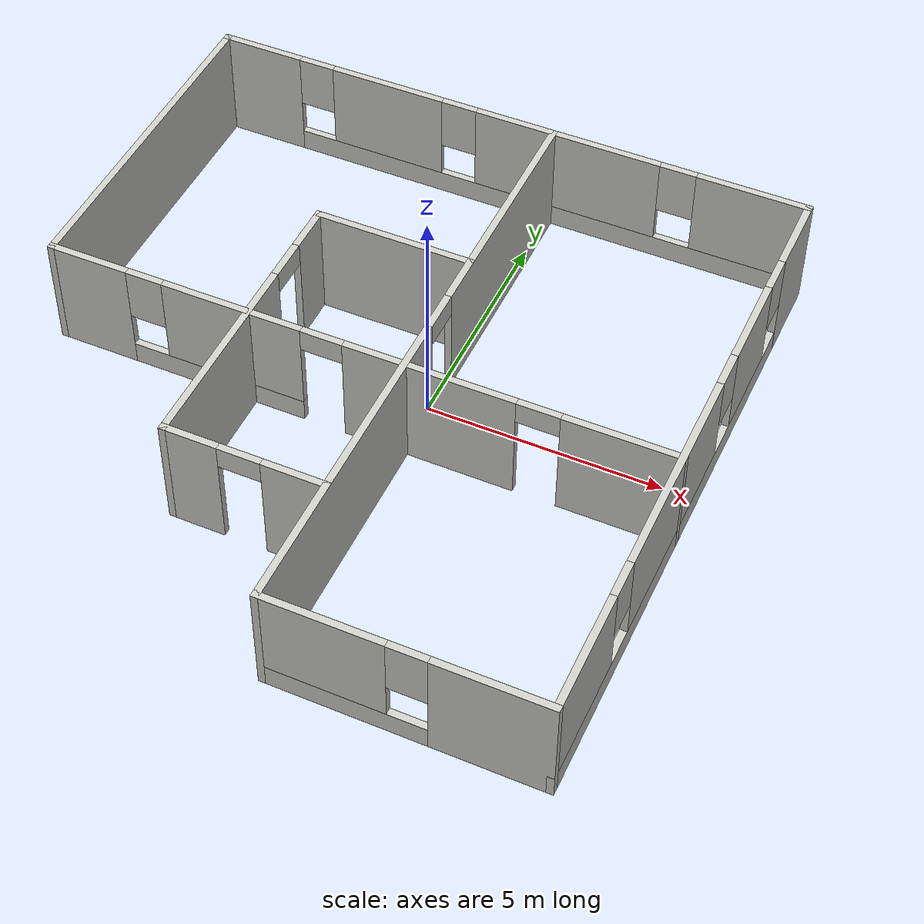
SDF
<?xml version='1.0'?>
<sdf version='1.6'>
  <model name='Robot_Evi'>
    <pose frame=''>-1.01369 -0.516252 0 0 -0 0</pose>
    <link name='Wall_1'>
      <pose frame=''>0 6.675 0 0 -0 0</pose>
      <visual name='Wall_1_Visual_0'>
        <pose frame=''>-5.80687 0 1.25 0 -0 0</pose>
        <geometry>
          <box>
            <size>1.88626 0.15 2.5</size>
          </box>
        </geometry>
        <material>
          <script>
            <uri>file://media/materials/scripts/gazebo.material</uri>
            <name>Gazebo/CeilingTiled</name>
          </script>
          <ambient>1 1 1 1</ambient>
        </material>
      </visual>
      <collision name='Wall_1_Collision_0'>
        <geometry>
          <box>
            <size>1.88626 0.15 2.5</size>
          </box>
        </geometry>
        <pose frame=''>-5.80687 0 1.25 0 -0 0</pose>
      </collision>
      <visual name='Wall_1_Visual_1'>
        <pose frame=''>0.943132 0 0.25 0 -0 0</pose>
        <geometry>
          <box>
            <size>11.6137 0.15 0.5</size>
          </box>
        </geometry>
        <material>
          <script>
            <uri>file://media/materials/scripts/gazebo.material</uri>
            <name>Gazebo/CeilingTiled</name>
          </script>
          <ambient>1 1 1 1</ambient>
        </material>
      </visual>
      <collision name='Wall_1_Collision_1'>
        <geometry>
          <box>
            <size>11.6137 0.15 0.5</size>
          </box>
        </geometry>
        <pose frame=''>0.943132 0 0.25 0 -0 0</pose>
      </collision>
      <visual name='Wall_1_Visual_2'>
        <pose frame=''>-2.76953 0 1.5 0 -0 0</pose>
        <geometry>
          <box>
            <size>2.58841 0.15 2</size>
          </box>
        </geometry>
        <material>
          <script>
            <uri>file://media/materials/scripts/gazebo.material</uri>
            <name>Gazebo/CeilingTiled</name>
          </script>
          <ambient>1 1 1 1</ambient>
        </material>
      </visual>
      <collision name='Wall_1_Collision_2'>
        <geometry>
          <box>
            <size>2.58841 0.15 2</size>
          </box>
        </geometry>
        <pose frame=''>-2.76953 0 1.5 0 -0 0</pose>
      </collision>
      <visual name='Wall_1_Visual_3'>
        <pose frame=''>1.40344 0 1.5 0 -0 0</pose>
        <geometry>
          <box>
            <size>4.15754 0.15 2</size>
          </box>
        </geometry>
        <material>
          <script>
            <uri>file://media/materials/scripts/gazebo.material</uri>
            <name>Gazebo/CeilingTiled</name>
          </script>
          <ambient>1 1 1 1</ambient>
        </material>
      </visual>
      <collision name='Wall_1_Collision_3'>
        <geometry>
          <box>
            <size>4.15754 0.15 2</size>
          </box>
        </geometry>
        <pose frame=''>1.40344 0 1.5 0 -0 0</pose>
      </collision>
      <visual name='Wall_1_Visual_4'>
        <pose frame=''>5.5161 0 1.5 0 -0 0</pose>
        <geometry>
          <box>
            <size>2.46779 0.15 2</size>
          </box>
        </geometry>
        <material>
          <script>
            <uri>file://media/materials/scripts/gazebo.material</uri>
            <name>Gazebo/CeilingTiled</name>
          </script>
          <ambient>1 1 1 1</ambient>
        </material>
      </visual>
      <collision name='Wall_1_Collision_4'>
        <geometry>
          <box>
            <size>2.46779 0.15 2</size>
          </box>
        </geometry>
        <pose frame=''>5.5161 0 1.5 0 -0 0</pose>
      </collision>
      <visual name='Wall_1_Visual_5'>
        <pose frame=''>-4.46374 0 1.9 0 -0 0</pose>
        <geometry>
          <box>
            <size>0.8 0.15 1.2</size>
          </box>
        </geometry>
        <material>
          <script>
            <uri>file://media/materials/scripts/gazebo.material</uri>
            <name>Gazebo/CeilingTiled</name>
          </script>
          <ambient>1 1 1 1</ambient>
        </material>
      </visual>
      <collision name='Wall_1_Collision_5'>
        <geometry>
          <box>
            <size>0.8 0.15 1.2</size>
          </box>
        </geometry>
        <pose frame=''>-4.46374 0 1.9 0 -0 0</pose>
      </collision>
      <visual name='Wall_1_Visual_6'>
        <pose frame=''>-1.07533 0 1.9 0 -0 0</pose>
        <geometry>
          <box>
            <size>0.8 0.15 1.2</size>
          </box>
        </geometry>
        <material>
          <script>
            <uri>file://media/materials/scripts/gazebo.material</uri>
            <name>Gazebo/CeilingTiled</name>
          </script>
          <ambient>1 1 1 1</ambient>
        </material>
      </visual>
      <collision name='Wall_1_Collision_6'>
        <geometry>
          <box>
            <size>0.8 0.15 1.2</size>
          </box>
        </geometry>
        <pose frame=''>-1.07533 0 1.9 0 -0 0</pose>
      </collision>
      <visual name='Wall_1_Visual_7'>
        <pose frame=''>3.88221 0 1.9 0 -0 0</pose>
        <geometry>
          <box>
            <size>0.8 0.15 1.2</size>
          </box>
        </geometry>
        <material>
          <script>
            <uri>file://media/materials/scripts/gazebo.material</uri>
            <name>Gazebo/CeilingTiled</name>
          </script>
          <ambient>1 1 1 1</ambient>
        </material>
      </visual>
      <collision name='Wall_1_Collision_7'>
        <geometry>
          <box>
            <size>0.8 0.15 1.2</size>
          </box>
        </geometry>
        <pose frame=''>3.88221 0 1.9 0 -0 0</pose>
      </collision>
    </link>
    <link name='Wall_10'>
      <pose frame=''>3.875 -6.675 0 0 -0 3.14159</pose>
      <visual name='Wall_10_Visual_0'>
        <pose frame=''>-1.68077 0 1.25 0 -0 0</pose>
        <geometry>
          <box>
            <size>2.38847 0.15 2.5</size>
          </box>
        </geometry>
        <material>
          <script>
            <uri>file://media/materials/scripts/gazebo.material</uri>
            <name>Gazebo/CeilingTiled</name>
          </script>
          <ambient>1 1 1 1</ambient>
        </material>
      </visual>
      <collision name='Wall_10_Collision_0'>
        <geometry>
          <box>
            <size>2.38847 0.15 2.5</size>
          </box>
        </geometry>
        <pose frame=''>-1.68077 0 1.25 0 -0 0</pose>
      </collision>
      <visual name='Wall_10_Visual_1'>
        <pose frame=''>1.19423 0 0.25 0 -0 0</pose>
        <geometry>
          <box>
            <size>3.36153 0.15 0.5</size>
          </box>
        </geometry>
        <material>
          <script>
            <uri>file://media/materials/scripts/gazebo.material</uri>
            <name>Gazebo/CeilingTiled</name>
          </script>
          <ambient>1 1 1 1</ambient>
        </material>
      </visual>
      <collision name='Wall_10_Collision_1'>
        <geometry>
          <box>
            <size>3.36153 0.15 0.5</size>
          </box>
        </geometry>
        <pose frame=''>1.19423 0 0.25 0 -0 0</pose>
      </collision>
      <visual name='Wall_10_Visual_2'>
        <pose frame=''>1.59423 0 1.5 0 -0 0</pose>
        <geometry>
          <box>
            <size>2.56153 0.15 2</size>
          </box>
        </geometry>
        <material>
          <script>
            <uri>file://media/materials/scripts/gazebo.material</uri>
            <name>Gazebo/CeilingTiled</name>
          </script>
          <ambient>1 1 1 1</ambient>
        </material>
      </visual>
      <collision name='Wall_10_Collision_2'>
        <geometry>
          <box>
            <size>2.56153 0.15 2</size>
          </box>
        </geometry>
        <pose frame=''>1.59423 0 1.5 0 -0 0</pose>
      </collision>
      <visual name='Wall_10_Visual_3'>
        <pose frame=''>-0.086531 0 1.9 0 -0 0</pose>
        <geometry>
          <box>
            <size>0.8 0.15 1.2</size>
          </box>
        </geometry>
        <material>
          <script>
            <uri>file://media/materials/scripts/gazebo.material</uri>
            <name>Gazebo/CeilingTiled</name>
          </script>
          <ambient>1 1 1 1</ambient>
        </material>
      </visual>
      <collision name='Wall_10_Collision_3'>
        <geometry>
          <box>
            <size>0.8 0.15 1.2</size>
          </box>
        </geometry>
        <pose frame=''>-0.086531 0 1.9 0 -0 0</pose>
      </collision>
    </link>
    <link name='Wall_11'>
      <pose frame=''>1.075 0 0 0 -0 1.5708</pose>
      <visual name='Wall_11_Visual_0'>
        <pose frame=''>-3.16298 0 1.25 0 -0 0</pose>
        <geometry>
          <box>
            <size>7.17404 0.15 2.5</size>
          </box>
        </geometry>
        <material>
          <script>
            <uri>file://media/materials/scripts/gazebo.material</uri>
            <name>Gazebo/CeilingTiled</name>
          </script>
          <ambient>1 1 1 1</ambient>
        </material>
      </visual>
      <collision name='Wall_11_Collision_0'>
        <geometry>
          <box>
            <size>7.17404 0.15 2.5</size>
          </box>
        </geometry>
        <pose frame=''>-3.16298 0 1.25 0 -0 0</pose>
      </collision>
      <visual name='Wall_11_Visual_1'>
        <pose frame=''>4.03702 0 1.25 0 -0 0</pose>
        <geometry>
          <box>
            <size>5.42596 0.15 2.5</size>
          </box>
        </geometry>
        <material>
          <script>
            <uri>file://media/materials/scripts/gazebo.material</uri>
            <name>Gazebo/CeilingTiled</name>
          </script>
          <ambient>1 1 1 1</ambient>
        </material>
      </visual>
      <collision name='Wall_11_Collision_1'>
        <geometry>
          <box>
            <size>5.42596 0.15 2.5</size>
          </box>
        </geometry>
        <pose frame=''>4.03702 0 1.25 0 -0 0</pose>
      </collision>
      <visual name='Wall_11_Visual_2'>
        <pose frame=''>0.87404 0 2.25 0 -0 0</pose>
        <geometry>
          <box>
            <size>0.9 0.15 0.5</size>
          </box>
        </geometry>
        <material>
          <script>
            <uri>file://media/materials/scripts/gazebo.material</uri>
            <name>Gazebo/CeilingTiled</name>
          </script>
          <ambient>1 1 1 1</ambient>
        </material>
      </visual>
      <collision name='Wall_11_Collision_2'>
        <geometry>
          <box>
            <size>0.9 0.15 0.5</size>
          </box>
        </geometry>
        <pose frame=''>0.87404 0 2.25 0 -0 0</pose>
      </collision>
    </link>
    <link name='Wall_13'>
      <collision name='Wall_13_Collision'>
        <geometry>
          <box>
            <size>3.5 0.15 2.5</size>
          </box>
        </geometry>
        <pose frame=''>0 0 1.25 0 -0 0</pose>
      </collision>
      <visual name='Wall_13_Visual'>
        <pose frame=''>0 0 1.25 0 -0 0</pose>
        <geometry>
          <box>
            <size>3.5 0.15 2.5</size>
          </box>
        </geometry>
        <material>
          <script>
            <uri>file://media/materials/scripts/gazebo.material</uri>
            <name>Gazebo/CeilingTiled</name>
          </script>
          <ambient>1 1 1 1</ambient>
        </material>
      </visual>
      <pose frame=''>-0.602168 2.38049 0 0 -0 3.14159</pose>
    </link>
    <link name='Wall_14'>
      <pose frame=''>-2.27717 -0.794511 0 0 0 -1.5708</pose>
      <visual name='Wall_14_Visual_0'>
        <pose frame=''>-2.7067 0 1.25 0 -0 0</pose>
        <geometry>
          <box>
            <size>1.08659 0.15 2.5</size>
          </box>
        </geometry>
        <material>
          <script>
            <uri>file://media/materials/scripts/gazebo.material</uri>
            <name>Gazebo/CeilingTiled</name>
          </script>
          <ambient>1 1 1 1</ambient>
        </material>
      </visual>
      <collision name='Wall_14_Collision_0'>
        <geometry>
          <box>
            <size>1.08659 0.15 2.5</size>
          </box>
        </geometry>
        <pose frame=''>-2.7067 0 1.25 0 -0 0</pose>
      </collision>
      <visual name='Wall_14_Visual_1'>
        <pose frame=''>0.993296 0 1.25 0 -0 0</pose>
        <geometry>
          <box>
            <size>4.51341 0.15 2.5</size>
          </box>
        </geometry>
        <material>
          <script>
            <uri>file://media/materials/scripts/gazebo.material</uri>
            <name>Gazebo/CeilingTiled</name>
          </script>
          <ambient>1 1 1 1</ambient>
        </material>
      </visual>
      <collision name='Wall_14_Collision_1'>
        <geometry>
          <box>
            <size>4.51341 0.15 2.5</size>
          </box>
        </geometry>
        <pose frame=''>0.993296 0 1.25 0 -0 0</pose>
      </collision>
      <visual name='Wall_14_Visual_2'>
        <pose frame=''>-1.71341 0 2.25 0 -0 0</pose>
        <geometry>
          <box>
            <size>0.9 0.15 0.5</size>
          </box>
        </geometry>
        <material>
          <script>
            <uri>file://media/materials/scripts/gazebo.material</uri>
            <name>Gazebo/CeilingTiled</name>
          </script>
          <ambient>1 1 1 1</ambient>
        </material>
      </visual>
      <collision name='Wall_14_Collision_2'>
        <geometry>
          <box>
            <size>0.9 0.15 0.5</size>
          </box>
        </geometry>
        <pose frame=''>-1.71341 0 2.25 0 -0 0</pose>
      </collision>
    </link>
    <link name='Wall_17'>
      <pose frame=''>-0.602168 -3.96951 0 0 -0 0</pose>
      <visual name='Wall_17_Visual_0'>
        <pose frame=''>-1.14307 0 1.25 0 -0 0</pose>
        <geometry>
          <box>
            <size>1.21385 0.15 2.5</size>
          </box>
        </geometry>
        <material>
          <script>
            <uri>file://media/materials/scripts/gazebo.material</uri>
            <name>Gazebo/CeilingTiled</name>
          </script>
          <ambient>1 1 1 1</ambient>
        </material>
      </visual>
      <collision name='Wall_17_Collision_0'>
        <geometry>
          <box>
            <size>1.21385 0.15 2.5</size>
          </box>
        </geometry>
        <pose frame=''>-1.14307 0 1.25 0 -0 0</pose>
      </collision>
      <visual name='Wall_17_Visual_1'>
        <pose frame=''>1.05693 0 1.25 0 -0 0</pose>
        <geometry>
          <box>
            <size>1.38615 0.15 2.5</size>
          </box>
        </geometry>
        <material>
          <script>
            <uri>file://media/materials/scripts/gazebo.material</uri>
            <name>Gazebo/CeilingTiled</name>
          </script>
          <ambient>1 1 1 1</ambient>
        </material>
      </visual>
      <collision name='Wall_17_Collision_1'>
        <geometry>
          <box>
            <size>1.38615 0.15 2.5</size>
          </box>
        </geometry>
        <pose frame=''>1.05693 0 1.25 0 -0 0</pose>
      </collision>
      <visual name='Wall_17_Visual_2'>
        <pose frame=''>-0.086148 0 2.25 0 -0 0</pose>
        <geometry>
          <box>
            <size>0.9 0.15 0.5</size>
          </box>
        </geometry>
        <material>
          <script>
            <uri>file://media/materials/scripts/gazebo.material</uri>
            <name>Gazebo/CeilingTiled</name>
          </script>
          <ambient>1 1 1 1</ambient>
        </material>
      </visual>
      <collision name='Wall_17_Collision_2'>
        <geometry>
          <box>
            <size>0.9 0.15 0.5</size>
          </box>
        </geometry>
        <pose frame=''>-0.086148 0 2.25 0 -0 0</pose>
      </collision>
    </link>
    <link name='Wall_2'>
      <pose frame=''>6.675 0 0 0 0 -1.5708</pose>
      <visual name='Wall_2_Visual_0'>
        <pose frame=''>-5.85484 0 1.25 0 -0 0</pose>
        <geometry>
          <box>
            <size>1.79033 0.15 2.5</size>
          </box>
        </geometry>
        <material>
          <script>
            <uri>file://media/materials/scripts/gazebo.material</uri>
            <name>Gazebo/CeilingTiled</name>
          </script>
          <ambient>1 1 1 1</ambient>
        </material>
      </visual>
      <collision name='Wall_2_Collision_0'>
        <geometry>
          <box>
            <size>1.79033 0.15 2.5</size>
          </box>
        </geometry>
        <pose frame=''>-5.85484 0 1.25 0 -0 0</pose>
      </collision>
      <visual name='Wall_2_Visual_1'>
        <pose frame=''>0.895164 0 0.25 0 -0 0</pose>
        <geometry>
          <box>
            <size>11.7097 0.15 0.5</size>
          </box>
        </geometry>
        <material>
          <script>
            <uri>file://media/materials/scripts/gazebo.material</uri>
            <name>Gazebo/CeilingTiled</name>
          </script>
          <ambient>1 1 1 1</ambient>
        </material>
      </visual>
      <collision name='Wall_2_Collision_1'>
        <geometry>
          <box>
            <size>11.7097 0.15 0.5</size>
          </box>
        </geometry>
        <pose frame=''>0.895164 0 0.25 0 -0 0</pose>
      </collision>
      <visual name='Wall_2_Visual_2'>
        <pose frame=''>-3.14973 0 1.5 0 -0 0</pose>
        <geometry>
          <box>
            <size>2.01988 0.15 2</size>
          </box>
        </geometry>
        <material>
          <script>
            <uri>file://media/materials/scripts/gazebo.material</uri>
            <name>Gazebo/CeilingTiled</name>
          </script>
          <ambient>1 1 1 1</ambient>
        </material>
      </visual>
      <collision name='Wall_2_Collision_2'>
        <geometry>
          <box>
            <size>2.01988 0.15 2</size>
          </box>
        </geometry>
        <pose frame=''>-3.14973 0 1.5 0 -0 0</pose>
      </collision>
      <visual name='Wall_2_Visual_3'>
        <pose frame=''>0.994214 0 1.5 0 -0 0</pose>
        <geometry>
          <box>
            <size>4.66801 0.15 2</size>
          </box>
        </geometry>
        <material>
          <script>
            <uri>file://media/materials/scripts/gazebo.material</uri>
            <name>Gazebo/CeilingTiled</name>
          </script>
          <ambient>1 1 1 1</ambient>
        </material>
      </visual>
      <collision name='Wall_2_Collision_3'>
        <geometry>
          <box>
            <size>4.66801 0.15 2</size>
          </box>
        </geometry>
        <pose frame=''>0.994214 0 1.5 0 -0 0</pose>
      </collision>
      <visual name='Wall_2_Visual_4'>
        <pose frame=''>5.43911 0 1.5 0 -0 0</pose>
        <geometry>
          <box>
            <size>2.62178 0.15 2</size>
          </box>
        </geometry>
        <material>
          <script>
            <uri>file://media/materials/scripts/gazebo.material</uri>
            <name>Gazebo/CeilingTiled</name>
          </script>
          <ambient>1 1 1 1</ambient>
        </material>
      </visual>
      <collision name='Wall_2_Collision_4'>
        <geometry>
          <box>
            <size>2.62178 0.15 2</size>
          </box>
        </geometry>
        <pose frame=''>5.43911 0 1.5 0 -0 0</pose>
      </collision>
      <visual name='Wall_2_Visual_5'>
        <pose frame=''>-4.55967 0 1.9 0 -0 0</pose>
        <geometry>
          <box>
            <size>0.8 0.15 1.2</size>
          </box>
        </geometry>
        <material>
          <script>
            <uri>file://media/materials/scripts/gazebo.material</uri>
            <name>Gazebo/CeilingTiled</name>
          </script>
          <ambient>1 1 1 1</ambient>
        </material>
      </visual>
      <collision name='Wall_2_Collision_5'>
        <geometry>
          <box>
            <size>0.8 0.15 1.2</size>
          </box>
        </geometry>
        <pose frame=''>-4.55967 0 1.9 0 -0 0</pose>
      </collision>
      <visual name='Wall_2_Visual_6'>
        <pose frame=''>-1.73979 0 1.9 0 -0 0</pose>
        <geometry>
          <box>
            <size>0.8 0.15 1.2</size>
          </box>
        </geometry>
        <material>
          <script>
            <uri>file://media/materials/scripts/gazebo.material</uri>
            <name>Gazebo/CeilingTiled</name>
          </script>
          <ambient>1 1 1 1</ambient>
        </material>
      </visual>
      <collision name='Wall_2_Collision_6'>
        <geometry>
          <box>
            <size>0.8 0.15 1.2</size>
          </box>
        </geometry>
        <pose frame=''>-1.73979 0 1.9 0 -0 0</pose>
      </collision>
      <visual name='Wall_2_Visual_7'>
        <pose frame=''>3.72822 0 1.9 0 -0 0</pose>
        <geometry>
          <box>
            <size>0.8 0.15 1.2</size>
          </box>
        </geometry>
        <material>
          <script>
            <uri>file://media/materials/scripts/gazebo.material</uri>
            <name>Gazebo/CeilingTiled</name>
          </script>
          <ambient>1 1 1 1</ambient>
        </material>
      </visual>
      <collision name='Wall_2_Collision_7'>
        <geometry>
          <box>
            <size>0.8 0.15 1.2</size>
          </box>
        </geometry>
        <pose frame=''>3.72822 0 1.9 0 -0 0</pose>
      </collision>
    </link>
    <link name='Wall_5'>
      <collision name='Wall_5_Collision'>
        <geometry>
          <box>
            <size>7.5 0.15 2.5</size>
          </box>
        </geometry>
        <pose frame=''>0 0 1.25 0 -0 0</pose>
      </collision>
      <visual name='Wall_5_Visual'>
        <pose frame=''>0 0 1.25 0 -0 0</pose>
        <geometry>
          <box>
            <size>7.5 0.15 2.5</size>
          </box>
        </geometry>
        <material>
          <script>
            <uri>file://media/materials/scripts/gazebo.material</uri>
            <name>Gazebo/CeilingTiled</name>
          </script>
          <ambient>1 1 1 1</ambient>
        </material>
      </visual>
      <pose frame=''>-6.675 3 0 0 0 -1.5708</pose>
    </link>
    <link name='Wall_6'>
      <pose frame=''>0 -0.675 0 0 -0 0</pose>
      <visual name='Wall_6_Visual_0'>
        <pose frame=''>-5.85664 0 1.25 0 -0 0</pose>
        <geometry>
          <box>
            <size>1.78672 0.15 2.5</size>
          </box>
        </geometry>
        <material>
          <script>
            <uri>file://media/materials/scripts/gazebo.material</uri>
            <name>Gazebo/CeilingTiled</name>
          </script>
          <ambient>1 1 1 1</ambient>
        </material>
      </visual>
      <collision name='Wall_6_Collision_0'>
        <geometry>
          <box>
            <size>1.78672 0.15 2.5</size>
          </box>
        </geometry>
        <pose frame=''>-5.85664 0 1.25 0 -0 0</pose>
      </collision>
      <visual name='Wall_6_Visual_1'>
        <pose frame=''>1.58816 0 1.25 0 -0 0</pose>
        <geometry>
          <box>
            <size>3.60831 0.15 2.5</size>
          </box>
        </geometry>
        <material>
          <script>
            <uri>file://media/materials/scripts/gazebo.material</uri>
            <name>Gazebo/CeilingTiled</name>
          </script>
          <ambient>1 1 1 1</ambient>
        </material>
      </visual>
      <collision name='Wall_6_Collision_1'>
        <geometry>
          <box>
            <size>3.60831 0.15 2.5</size>
          </box>
        </geometry>
        <pose frame=''>1.58816 0 1.25 0 -0 0</pose>
      </collision>
      <visual name='Wall_6_Visual_2'>
        <pose frame=''>5.52116 0 1.25 0 -0 0</pose>
        <geometry>
          <box>
            <size>2.45769 0.15 2.5</size>
          </box>
        </geometry>
        <material>
          <script>
            <uri>file://media/materials/scripts/gazebo.material</uri>
            <name>Gazebo/CeilingTiled</name>
          </script>
          <ambient>1 1 1 1</ambient>
        </material>
      </visual>
      <collision name='Wall_6_Collision_2'>
        <geometry>
          <box>
            <size>2.45769 0.15 2.5</size>
          </box>
        </geometry>
        <pose frame=''>5.52116 0 1.25 0 -0 0</pose>
      </collision>
      <visual name='Wall_6_Visual_3'>
        <pose frame=''>-3.03964 0 0.25 0 -0 0</pose>
        <geometry>
          <box>
            <size>3.84728 0.15 0.5</size>
          </box>
        </geometry>
        <material>
          <script>
            <uri>file://media/materials/scripts/gazebo.material</uri>
            <name>Gazebo/CeilingTiled</name>
          </script>
          <ambient>1 1 1 1</ambient>
        </material>
      </visual>
      <collision name='Wall_6_Collision_3'>
        <geometry>
          <box>
            <size>3.84728 0.15 0.5</size>
          </box>
        </geometry>
        <pose frame=''>-3.03964 0 0.25 0 -0 0</pose>
      </collision>
      <visual name='Wall_6_Visual_4'>
        <pose frame=''>-2.63964 0 1.5 0 -0 0</pose>
        <geometry>
          <box>
            <size>3.04728 0.15 2</size>
          </box>
        </geometry>
        <material>
          <script>
            <uri>file://media/materials/scripts/gazebo.material</uri>
            <name>Gazebo/CeilingTiled</name>
          </script>
          <ambient>1 1 1 1</ambient>
        </material>
      </visual>
      <collision name='Wall_6_Collision_4'>
        <geometry>
          <box>
            <size>3.04728 0.15 2</size>
          </box>
        </geometry>
        <pose frame=''>-2.63964 0 1.5 0 -0 0</pose>
      </collision>
      <visual name='Wall_6_Visual_5'>
        <pose frame=''>-4.56328 0 1.9 0 -0 0</pose>
        <geometry>
          <box>
            <size>0.8 0.15 1.2</size>
          </box>
        </geometry>
        <material>
          <script>
            <uri>file://media/materials/scripts/gazebo.material</uri>
            <name>Gazebo/CeilingTiled</name>
          </script>
          <ambient>1 1 1 1</ambient>
        </material>
      </visual>
      <collision name='Wall_6_Collision_5'>
        <geometry>
          <box>
            <size>0.8 0.15 1.2</size>
          </box>
        </geometry>
        <pose frame=''>-4.56328 0 1.9 0 -0 0</pose>
      </collision>
      <visual name='Wall_6_Visual_6'>
        <pose frame=''>3.84231 0 2.25 0 -0 0</pose>
        <geometry>
          <box>
            <size>0.9 0.15 0.5</size>
          </box>
        </geometry>
        <material>
          <script>
            <uri>file://media/materials/scripts/gazebo.material</uri>
            <name>Gazebo/CeilingTiled</name>
          </script>
          <ambient>1 1 1 1</ambient>
        </material>
      </visual>
      <collision name='Wall_6_Collision_6'>
        <geometry>
          <box>
            <size>0.9 0.15 0.5</size>
          </box>
        </geometry>
        <pose frame=''>3.84231 0 2.25 0 -0 0</pose>
      </collision>
      <visual name='Wall_6_Visual_7'>
        <pose frame=''>-0.665997 0 2.25 0 -0 0</pose>
        <geometry>
          <box>
            <size>0.9 0.15 0.5</size>
          </box>
        </geometry>
        <material>
          <script>
            <uri>file://media/materials/scripts/gazebo.material</uri>
            <name>Gazebo/CeilingTiled</name>
          </script>
          <ambient>1 1 1 1</ambient>
        </material>
      </visual>
      <collision name='Wall_6_Collision_7'>
        <geometry>
          <box>
            <size>0.9 0.15 0.5</size>
          </box>
        </geometry>
        <pose frame=''>-0.665997 0 2.25 0 -0 0</pose>
      </collision>
    </link>
    <static>1</static>
  </model>
</sdf>
